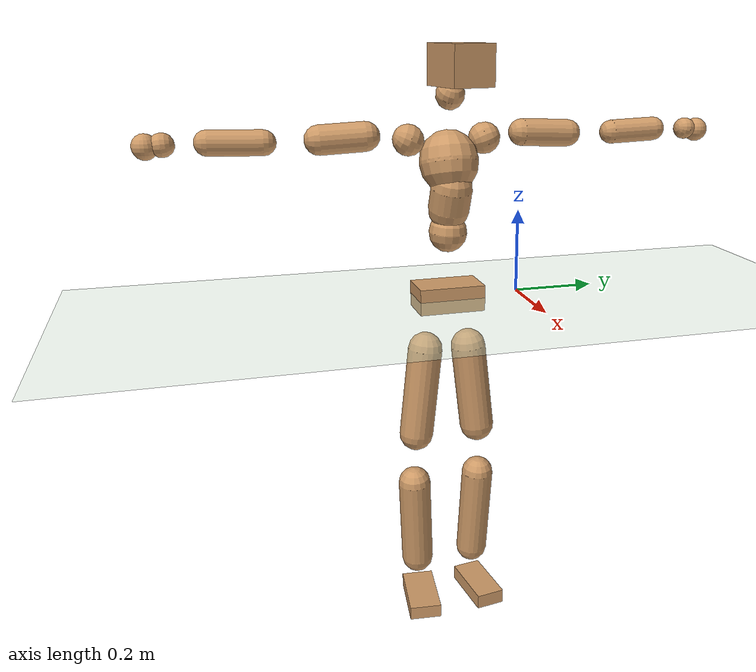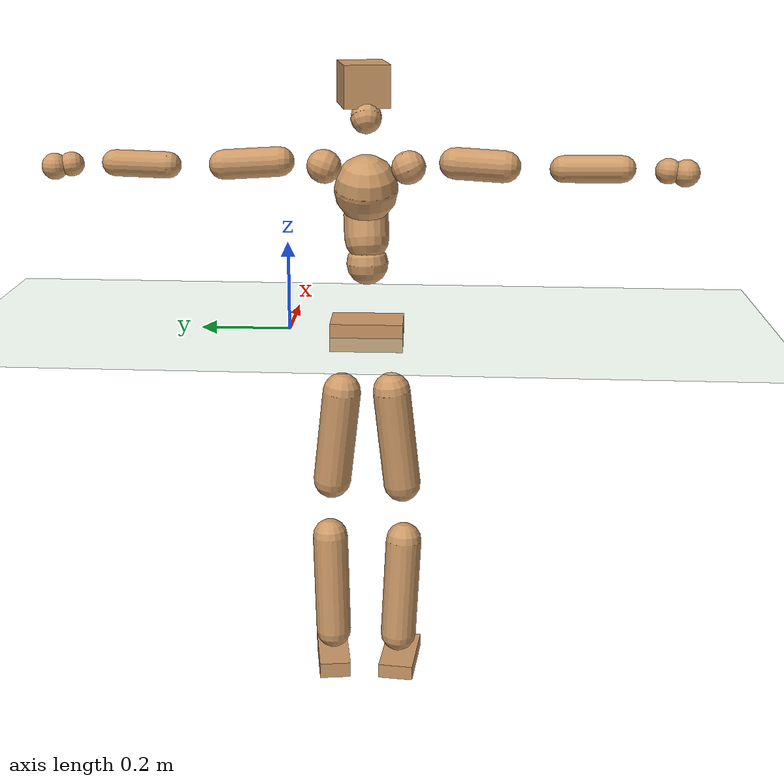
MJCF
<mujoco model="humanoid">
  <compiler coordinate="local" angle="radian"/>
  <default>
    <joint damping="0.0" armature="0.01" stiffness="0.0" limited="true"/>
    <geom conaffinity="1" condim="3" contype="7" margin="0.001" rgba="0.8 0.6 .4 1"/>
  </default>
  <asset>
    <texture type="skybox" builtin="gradient" rgb1=".4 .5 .6" rgb2="0 0 0" width="100" height="100"/>
    <texture builtin="flat" height="1278" mark="cross" markrgb="1 1 1" name="texgeom" random="0.01" rgb1="0.8 0.6 0.4" rgb2="0.8 0.6 0.4" type="cube" width="127"/>
    <texture builtin="checker" height="100" name="texplane" rgb1="0 0 0" rgb2="0.8 0.8 0.8" type="2d" width="100"/>
    <material name="MatPlane" reflectance="0.5" shininess="1" specular="1" texrepeat="60 60" texture="texplane"/>
    <material name="geom" texture="texgeom" texuniform="true"/>
  </asset>
  <worldbody>
    <light cutoff="100" diffuse="1 1 1" dir="-0 0 -1.3" directional="true" exponent="1" pos="0 0 1.3" specular=".1 .1 .1"/>
    <geom conaffinity="1" condim="3" name="floor" pos="0 0 0" rgba="0.8 0.9 0.8 1" size="100 100 .2" type="plane" material="MatPlane"/>
    <body name="Pelvis" pos="-0.0019 -0.1756 0.0084">
      <freejoint name="Pelvis"/>
      <geom type="box" contype="1" conaffinity="1" density="5359.374605" pos="-0.0055 -0.0001 -0.0109" size="0.049 0.0808 0.0315" quat="1.0000 0.0000 0.0000 0.0062" name="Pelvis"/>
      <body name="L_Hip" pos="-0.0161 0.0493 -0.0773">
        <joint name="L_Hip_x" type="hinge" pos="0 0 0" axis="1 0 0" stiffness="1600" damping="160" armature="0.02" range="-180.0000 180.0000"/>
        <joint name="L_Hip_y" type="hinge" pos="0 0 0" axis="0 1 0" stiffness="1600" damping="160" armature="0.02" range="-180.0000 180.0000"/>
        <joint name="L_Hip_z" type="hinge" pos="0 0 0" axis="0 0 1" stiffness="1600" damping="160" armature="0.02" range="-180.0000 180.0000"/>
        <geom type="capsule" contype="1" conaffinity="1" density="2040.816327" size="0.0435" fromto="0.0015 0.0080 -0.0731 0.0059 0.0319 -0.2923" name="L_Hip"/>
        <body name="L_Knee" pos="0.0074 0.0398 -0.3654">
          <joint name="L_Knee_x" type="hinge" pos="0 0 0" axis="1 0 0" stiffness="1600" damping="160" armature="0.02" range="-180.0000 180.0000"/>
          <joint name="L_Knee_y" type="hinge" pos="0 0 0" axis="0 1 0" stiffness="1600" damping="160" armature="0.02" range="-180.0000 180.0000"/>
          <joint name="L_Knee_z" type="hinge" pos="0 0 0" axis="0 0 1" stiffness="1600" damping="160" armature="0.02" range="-180.0000 180.0000"/>
          <geom type="capsule" contype="1" conaffinity="1" density="1234.567901" size="0.041" fromto="-0.0057 -0.0023 -0.0708 -0.0252 -0.0103 -0.3114" name="L_Knee"/>
          <body name="L_Ankle" pos="-0.0309 -0.0127 -0.3821">
            <joint name="L_Ankle_x" type="hinge" pos="0 0 0" axis="1 0 0" stiffness="1600" damping="160" armature="0.02" range="-180.0000 180.0000"/>
            <joint name="L_Ankle_y" type="hinge" pos="0 0 0" axis="0 1 0" stiffness="1600" damping="160" armature="0.02" range="-180.0000 180.0000"/>
            <joint name="L_Ankle_z" type="hinge" pos="0 0 0" axis="0 0 1" stiffness="1600" damping="160" armature="0.02" range="-180.0000 180.0000"/>
            <geom type="box" contype="1" conaffinity="1" density="1000.000013" pos="0.0555 0.0081 -0.0264" size="0.0777 0.0369 0.0188" quat="0.9974 0.0000 0.0000 0.0723" name="L_Ankle"/>
            <body name="L_Toe" pos="0.1109 0.0162 -0.0528">
              <joint name="L_Toe_x" type="hinge" pos="0 0 0" axis="1 0 0" stiffness="1000" damping="100" armature="0.02" range="-180.0000 180.0000"/>
              <joint name="L_Toe_y" type="hinge" pos="0 0 0" axis="0 1 0" stiffness="1000" damping="100" armature="0.02" range="-180.0000 180.0000"/>
              <joint name="L_Toe_z" type="hinge" pos="0 0 0" axis="0 0 1" stiffness="1000" damping="100" armature="0.02" range="-180.0000 180.0000"/>
              <geom type="box" contype="1" conaffinity="1" density="9310036.408418" pos="0.0000 0.0000 0.0278" size="0.0007 0.0019 0.001" quat="0.9968 0.0000 0.0000 0.0797" name="L_Toe"/>
            </body>
          </body>
        </body>
      </body>
      <body name="R_Hip" pos="-0.012 -0.0478 -0.0755">
        <joint name="R_Hip_x" type="hinge" pos="0 0 0" axis="1 0 0" stiffness="1600" damping="160" armature="0.02" range="-180.0000 180.0000"/>
        <joint name="R_Hip_y" type="hinge" pos="0 0 0" axis="0 1 0" stiffness="1600" damping="160" armature="0.02" range="-180.0000 180.0000"/>
        <joint name="R_Hip_z" type="hinge" pos="0 0 0" axis="0 0 1" stiffness="1600" damping="160" armature="0.02" range="-180.0000 180.0000"/>
        <geom type="capsule" contype="1" conaffinity="1" density="2040.816327" size="0.043" fromto="0.0010 -0.0082 -0.0725 0.0041 -0.0340 -0.3008" name="R_Hip"/>
        <body name="R_Knee" pos="0.0051 -0.0422 -0.3733">
          <joint name="R_Knee_x" type="hinge" pos="0 0 0" axis="1 0 0" stiffness="1600" damping="160" armature="0.02" range="-180.0000 180.0000"/>
          <joint name="R_Knee_y" type="hinge" pos="0 0 0" axis="0 1 0" stiffness="1600" damping="160" armature="0.02" range="-180.0000 180.0000"/>
          <joint name="R_Knee_z" type="hinge" pos="0 0 0" axis="0 0 1" stiffness="1600" damping="160" armature="0.02" range="-180.0000 180.0000"/>
          <geom type="capsule" contype="1" conaffinity="1" density="1234.567901" size="0.0417" fromto="-0.0054 0.0030 -0.0714 -0.0235 0.0131 -0.3105" name="R_Knee"/>
          <body name="R_Ankle" pos="-0.0289 0.0161 -0.3819">
            <joint name="R_Ankle_x" type="hinge" pos="0 0 0" axis="1 0 0" stiffness="1600" damping="160" armature="0.02" range="-180.0000 180.0000"/>
            <joint name="R_Ankle_y" type="hinge" pos="0 0 0" axis="0 1 0" stiffness="1600" damping="160" armature="0.02" range="-180.0000 180.0000"/>
            <joint name="R_Ankle_z" type="hinge" pos="0 0 0" axis="0 0 1" stiffness="1600" damping="160" armature="0.02" range="-180.0000 180.0000"/>
            <geom type="box" contype="1" conaffinity="1" density="1000.00002" pos="0.0563 -0.0056 -0.0214" size="0.0799 0.0409 0.0174" quat="0.9988 0.0000 0.0000 -0.0494" name="R_Ankle"/>
            <body name="R_Toe" pos="0.1127 -0.0112 -0.0429">
              <joint name="R_Toe_x" type="hinge" pos="0 0 0" axis="1 0 0" stiffness="1000" damping="100" armature="0.02" range="-180.0000 180.0000"/>
              <joint name="R_Toe_y" type="hinge" pos="0 0 0" axis="0 1 0" stiffness="1000" damping="100" armature="0.02" range="-180.0000 180.0000"/>
              <joint name="R_Toe_z" type="hinge" pos="0 0 0" axis="0 0 1" stiffness="1000" damping="100" armature="0.02" range="-180.0000 180.0000"/>
              <geom type="box" contype="1" conaffinity="1" density="9208534.153855" pos="0.0000 0.0000 0.0232" size="0.0008 0.002 0.001" quat="0.9992 0.0000 0.0000 -0.0399" name="R_Toe"/>
            </body>
          </body>
        </body>
      </body>
      <body name="Torso" pos="-0.0048 -0.0018 0.0875">
        <joint name="Torso_x" type="hinge" pos="0 0 0" axis="1 0 0" stiffness="2000" damping="200" armature="0.02" range="-180.0000 180.0000"/>
        <joint name="Torso_y" type="hinge" pos="0 0 0" axis="0 1 0" stiffness="2000" damping="200" armature="0.02" range="-180.0000 180.0000"/>
        <joint name="Torso_z" type="hinge" pos="0 0 0" axis="0 0 1" stiffness="2000" damping="200" armature="0.02" range="-180.0000 180.0000"/>
        <geom type="capsule" contype="1" conaffinity="1" density="2040.816327" size="0.0461" fromto="0.0027 0.0015 0.0586 0.0028 0.0016 0.0606" name="Torso"/>
        <body name="Spine" pos="0.0056 0.0031 0.1192">
          <joint name="Spine_x" type="hinge" pos="0 0 0" axis="1 0 0" stiffness="2000" damping="200" armature="0.02" range="-180.0000 180.0000"/>
          <joint name="Spine_y" type="hinge" pos="0 0 0" axis="0 1 0" stiffness="2000" damping="200" armature="0.02" range="-180.0000 180.0000"/>
          <joint name="Spine_z" type="hinge" pos="0 0 0" axis="0 0 1" stiffness="2000" damping="200" armature="0.02" range="-180.0000 180.0000"/>
          <geom type="capsule" contype="1" conaffinity="1" density="2040.816327" size="0.0492" fromto="0.0137 0.0029 0.0471 -0.0011 -0.0002 -0.0039" name="Spine"/>
          <body name="Chest" pos="0.0126 0.0026 0.0432">
            <joint name="Chest_x" type="hinge" pos="0 0 0" axis="1 0 0" stiffness="2000" damping="200" armature="0.02" range="-180.0000 180.0000"/>
            <joint name="Chest_y" type="hinge" pos="0 0 0" axis="0 1 0" stiffness="2000" damping="200" armature="0.02" range="-180.0000 180.0000"/>
            <joint name="Chest_z" type="hinge" pos="0 0 0" axis="0 0 1" stiffness="2000" damping="200" armature="0.02" range="-180.0000 180.0000"/>
            <geom type="capsule" contype="1" conaffinity="1" density="2040.816327" size="0.0697" fromto="-0.0181 -0.0016 0.0673 -0.0160 -0.0014 0.0597" name="Chest"/>
            <body name="Neck" pos="-0.035 -0.0053 0.1821">
              <joint name="Neck_x" type="hinge" pos="0 0 0" axis="1 0 0" stiffness="1000" damping="100" armature="0.02" range="-180.0000 180.0000"/>
              <joint name="Neck_y" type="hinge" pos="0 0 0" axis="0 1 0" stiffness="1000" damping="100" armature="0.02" range="-180.0000 180.0000"/>
              <joint name="Neck_z" type="hinge" pos="0 0 0" axis="0 0 1" stiffness="1000" damping="100" armature="0.02" range="-180.0000 180.0000"/>
              <geom type="capsule" contype="1" conaffinity="1" density="1000" size="0.0336" fromto="0.0241 0.0041 0.0313 0.0253 0.0043 0.0329" name="Neck"/>
              <body name="Head" pos="0.0493 0.0084 0.0642">
                <joint name="Head_x" type="hinge" pos="0 0 0" axis="1 0 0" stiffness="1000" damping="100" armature="0.02" range="-180.0000 180.0000"/>
                <joint name="Head_y" type="hinge" pos="0 0 0" axis="0 1 0" stiffness="1000" damping="100" armature="0.02" range="-180.0000 180.0000"/>
                <joint name="Head_z" type="hinge" pos="0 0 0" axis="0 0 1" stiffness="1000" damping="100" armature="0.02" range="-180.0000 180.0000"/>
                <geom type="box" contype="1" conaffinity="1" density="2249.999903" pos="0.0257 0.0052 0.0331" size="0.0662 0.0502 0.0455" quat="0.9950 0.0000 0.0000 0.0995" name="Head"/>
              </body>
            </body>
            <body name="L_Thorax" pos="-0.0326 0.0547 0.0998">
              <joint name="L_Thorax_x" type="hinge" pos="0 0 0" axis="1 0 0" stiffness="1000" damping="100" armature="0.02" range="-180.0000 180.0000"/>
              <joint name="L_Thorax_y" type="hinge" pos="0 0 0" axis="0 1 0" stiffness="1000" damping="100" armature="0.02" range="-180.0000 180.0000"/>
              <joint name="L_Thorax_z" type="hinge" pos="0 0 0" axis="0 0 1" stiffness="1000" damping="100" armature="0.02" range="-180.0000 180.0000"/>
              <geom type="capsule" contype="1" conaffinity="1" density="1000" size="0.0367" fromto="0.0009 0.0326 0.0129 0.0010 0.0345 0.0136" name="L_Thorax"/>
              <body name="L_Shoulder" pos="0.0019 0.0671 0.0265">
                <joint name="L_Shoulder_x" type="hinge" pos="0 0 0" axis="1 0 0" stiffness="1000" damping="100" armature="0.02" range="-720.0000 720.0000"/>
                <joint name="L_Shoulder_y" type="hinge" pos="0 0 0" axis="0 1 0" stiffness="1000" damping="100" armature="0.02" range="-720.0000 720.0000"/>
                <joint name="L_Shoulder_z" type="hinge" pos="0 0 0" axis="0 0 1" stiffness="1000" damping="100" armature="0.02" range="-720.0000 720.0000"/>
                <geom type="capsule" contype="1" conaffinity="1" density="1000" size="0.0319" fromto="-0.0046 0.0616 -0.0032 -0.0135 0.1809 -0.0095" name="L_Shoulder"/>
                <body name="L_Elbow" pos="-0.0181 0.2425 -0.0127">
                  <joint name="L_Elbow_x" type="hinge" pos="0 0 0" axis="1 0 0" stiffness="1000" damping="100" armature="0.02" range="-720.0000 720.0000"/>
                  <joint name="L_Elbow_y" type="hinge" pos="0 0 0" axis="0 1 0" stiffness="1000" damping="100" armature="0.02" range="-720.0000 720.0000"/>
                  <joint name="L_Elbow_z" type="hinge" pos="0 0 0" axis="0 0 1" stiffness="1000" damping="100" armature="0.02" range="-720.0000 720.0000"/>
                  <geom type="capsule" contype="1" conaffinity="1" density="1000" size="0.0284" fromto="-0.0013 0.0583 0.0020 -0.0040 0.1716 0.0060" name="L_Elbow"/>
                  <body name="L_Wrist" pos="-0.0053 0.2299 0.008">
                    <joint name="L_Wrist_x" type="hinge" pos="0 0 0" axis="1 0 0" stiffness="600" damping="60" armature="0.02" range="-180.0000 180.0000"/>
                    <joint name="L_Wrist_y" type="hinge" pos="0 0 0" axis="0 1 0" stiffness="600" damping="60" armature="0.02" range="-180.0000 180.0000"/>
                    <joint name="L_Wrist_z" type="hinge" pos="0 0 0" axis="0 0 1" stiffness="600" damping="60" armature="0.02" range="-180.0000 180.0000"/>
                    <geom type="capsule" contype="1" conaffinity="1" density="1000" size="0.0257" fromto="-0.0060 0.0343 -0.0043 -0.0064 0.0362 -0.0045" name="L_Wrist"/>
                    <body name="L_Hand" pos="-0.0124 0.0705 -0.0088">
                      <joint name="L_Hand_x" type="hinge" pos="0 0 0" axis="1 0 0" stiffness="600" damping="60" armature="0.02" range="-180.0000 180.0000"/>
                      <joint name="L_Hand_y" type="hinge" pos="0 0 0" axis="0 1 0" stiffness="600" damping="60" armature="0.02" range="-180.0000 180.0000"/>
                      <joint name="L_Hand_z" type="hinge" pos="0 0 0" axis="0 0 1" stiffness="600" damping="60" armature="0.02" range="-180.0000 180.0000"/>
                      <geom type="sphere" contype="1" conaffinity="1" density="1000" size="0.0283" pos="0.0000 0.0000 0.0000" name="L_Hand"/>
                    </body>
                  </body>
                </body>
              </body>
            </body>
            <body name="R_Thorax" pos="-0.0348 -0.0585 0.0989">
              <joint name="R_Thorax_x" type="hinge" pos="0 0 0" axis="1 0 0" stiffness="1000" damping="100" armature="0.02" range="-180.0000 180.0000"/>
              <joint name="R_Thorax_y" type="hinge" pos="0 0 0" axis="0 1 0" stiffness="1000" damping="100" armature="0.02" range="-180.0000 180.0000"/>
              <joint name="R_Thorax_z" type="hinge" pos="0 0 0" axis="0 0 1" stiffness="1000" damping="100" armature="0.02" range="-180.0000 180.0000"/>
              <geom type="capsule" contype="1" conaffinity="1" density="1000" size="0.0362" fromto="-0.0013 -0.0342 0.0137 -0.0014 -0.0360 0.0145" name="R_Thorax"/>
              <body name="R_Shoulder" pos="-0.0027 -0.0702 0.0282">
                <joint name="R_Shoulder_x" type="hinge" pos="0 0 0" axis="1 0 0" stiffness="1000" damping="100" armature="0.02" range="-720.0000 720.0000"/>
                <joint name="R_Shoulder_y" type="hinge" pos="0 0 0" axis="0 1 0" stiffness="1000" damping="100" armature="0.02" range="-720.0000 720.0000"/>
                <joint name="R_Shoulder_z" type="hinge" pos="0 0 0" axis="0 0 1" stiffness="1000" damping="100" armature="0.02" range="-720.0000 720.0000"/>
                <geom type="capsule" contype="1" conaffinity="1" density="1000" size="0.034" fromto="-0.0029 -0.0639 -0.0033 -0.0076 -0.1693 -0.0088" name="R_Shoulder"/>
                <body name="R_Elbow" pos="-0.0105 -0.2332 -0.0121">
                  <joint name="R_Elbow_x" type="hinge" pos="0 0 0" axis="1 0 0" stiffness="1000" damping="100" armature="0.02" range="-720.0000 720.0000"/>
                  <joint name="R_Elbow_y" type="hinge" pos="0 0 0" axis="0 1 0" stiffness="1000" damping="100" armature="0.02" range="-720.0000 720.0000"/>
                  <joint name="R_Elbow_z" type="hinge" pos="0 0 0" axis="0 0 1" stiffness="1000" damping="100" armature="0.02" range="-720.0000 720.0000"/>
                  <geom type="capsule" contype="1" conaffinity="1" density="1000" size="0.0288" fromto="-0.0029 -0.0587 0.0010 -0.0088 -0.1805 0.0032" name="R_Elbow"/>
                  <body name="R_Wrist" pos="-0.0117 -0.2392 0.0043">
                    <joint name="R_Wrist_x" type="hinge" pos="0 0 0" axis="1 0 0" stiffness="600" damping="60" armature="0.02" range="-180.0000 180.0000"/>
                    <joint name="R_Wrist_y" type="hinge" pos="0 0 0" axis="0 1 0" stiffness="600" damping="60" armature="0.02" range="-180.0000 180.0000"/>
                    <joint name="R_Wrist_z" type="hinge" pos="0 0 0" axis="0 0 1" stiffness="600" damping="60" armature="0.02" range="-180.0000 180.0000"/>
                    <geom type="capsule" contype="1" conaffinity="1" density="1000" size="0.0267" fromto="-0.0044 -0.0351 -0.0032 -0.0047 -0.0371 -0.0034" name="R_Wrist"/>
                    <body name="R_Hand" pos="-0.0091 -0.0722 -0.0065">
                      <joint name="R_Hand_x" type="hinge" pos="0 0 0" axis="1 0 0" stiffness="600" damping="60" armature="0.02" range="-180.0000 180.0000"/>
                      <joint name="R_Hand_y" type="hinge" pos="0 0 0" axis="0 1 0" stiffness="600" damping="60" armature="0.02" range="-180.0000 180.0000"/>
                      <joint name="R_Hand_z" type="hinge" pos="0 0 0" axis="0 0 1" stiffness="600" damping="60" armature="0.02" range="-180.0000 180.0000"/>
                      <geom type="sphere" contype="1" conaffinity="1" density="1000" size="0.0288" pos="0.0000 0.0000 0.0000" name="R_Hand"/>
                    </body>
                  </body>
                </body>
              </body>
            </body>
          </body>
        </body>
      </body>
    </body>
  </worldbody>
  <actuator>
    <motor name="L_Hip_x" joint="L_Hip_x" gear="500"/>
    <motor name="L_Hip_y" joint="L_Hip_y" gear="500"/>
    <motor name="L_Hip_z" joint="L_Hip_z" gear="500"/>
    <motor name="L_Knee_x" joint="L_Knee_x" gear="500"/>
    <motor name="L_Knee_y" joint="L_Knee_y" gear="500"/>
    <motor name="L_Knee_z" joint="L_Knee_z" gear="500"/>
    <motor name="L_Ankle_x" joint="L_Ankle_x" gear="500"/>
    <motor name="L_Ankle_y" joint="L_Ankle_y" gear="500"/>
    <motor name="L_Ankle_z" joint="L_Ankle_z" gear="500"/>
    <motor name="L_Toe_x" joint="L_Toe_x" gear="500"/>
    <motor name="L_Toe_y" joint="L_Toe_y" gear="500"/>
    <motor name="L_Toe_z" joint="L_Toe_z" gear="500"/>
    <motor name="R_Hip_x" joint="R_Hip_x" gear="500"/>
    <motor name="R_Hip_y" joint="R_Hip_y" gear="500"/>
    <motor name="R_Hip_z" joint="R_Hip_z" gear="500"/>
    <motor name="R_Knee_x" joint="R_Knee_x" gear="500"/>
    <motor name="R_Knee_y" joint="R_Knee_y" gear="500"/>
    <motor name="R_Knee_z" joint="R_Knee_z" gear="500"/>
    <motor name="R_Ankle_x" joint="R_Ankle_x" gear="500"/>
    <motor name="R_Ankle_y" joint="R_Ankle_y" gear="500"/>
    <motor name="R_Ankle_z" joint="R_Ankle_z" gear="500"/>
    <motor name="R_Toe_x" joint="R_Toe_x" gear="500"/>
    <motor name="R_Toe_y" joint="R_Toe_y" gear="500"/>
    <motor name="R_Toe_z" joint="R_Toe_z" gear="500"/>
    <motor name="Torso_x" joint="Torso_x" gear="500"/>
    <motor name="Torso_y" joint="Torso_y" gear="500"/>
    <motor name="Torso_z" joint="Torso_z" gear="500"/>
    <motor name="Spine_x" joint="Spine_x" gear="500"/>
    <motor name="Spine_y" joint="Spine_y" gear="500"/>
    <motor name="Spine_z" joint="Spine_z" gear="500"/>
    <motor name="Chest_x" joint="Chest_x" gear="500"/>
    <motor name="Chest_y" joint="Chest_y" gear="500"/>
    <motor name="Chest_z" joint="Chest_z" gear="500"/>
    <motor name="Neck_x" joint="Neck_x" gear="500"/>
    <motor name="Neck_y" joint="Neck_y" gear="500"/>
    <motor name="Neck_z" joint="Neck_z" gear="500"/>
    <motor name="Head_x" joint="Head_x" gear="500"/>
    <motor name="Head_y" joint="Head_y" gear="500"/>
    <motor name="Head_z" joint="Head_z" gear="500"/>
    <motor name="L_Thorax_x" joint="L_Thorax_x" gear="500"/>
    <motor name="L_Thorax_y" joint="L_Thorax_y" gear="500"/>
    <motor name="L_Thorax_z" joint="L_Thorax_z" gear="500"/>
    <motor name="L_Shoulder_x" joint="L_Shoulder_x" gear="500"/>
    <motor name="L_Shoulder_y" joint="L_Shoulder_y" gear="500"/>
    <motor name="L_Shoulder_z" joint="L_Shoulder_z" gear="500"/>
    <motor name="L_Elbow_x" joint="L_Elbow_x" gear="500"/>
    <motor name="L_Elbow_y" joint="L_Elbow_y" gear="500"/>
    <motor name="L_Elbow_z" joint="L_Elbow_z" gear="500"/>
    <motor name="L_Wrist_x" joint="L_Wrist_x" gear="500"/>
    <motor name="L_Wrist_y" joint="L_Wrist_y" gear="500"/>
    <motor name="L_Wrist_z" joint="L_Wrist_z" gear="500"/>
    <motor name="L_Hand_x" joint="L_Hand_x" gear="500"/>
    <motor name="L_Hand_y" joint="L_Hand_y" gear="500"/>
    <motor name="L_Hand_z" joint="L_Hand_z" gear="500"/>
    <motor name="R_Thorax_x" joint="R_Thorax_x" gear="500"/>
    <motor name="R_Thorax_y" joint="R_Thorax_y" gear="500"/>
    <motor name="R_Thorax_z" joint="R_Thorax_z" gear="500"/>
    <motor name="R_Shoulder_x" joint="R_Shoulder_x" gear="500"/>
    <motor name="R_Shoulder_y" joint="R_Shoulder_y" gear="500"/>
    <motor name="R_Shoulder_z" joint="R_Shoulder_z" gear="500"/>
    <motor name="R_Elbow_x" joint="R_Elbow_x" gear="500"/>
    <motor name="R_Elbow_y" joint="R_Elbow_y" gear="500"/>
    <motor name="R_Elbow_z" joint="R_Elbow_z" gear="500"/>
    <motor name="R_Wrist_x" joint="R_Wrist_x" gear="500"/>
    <motor name="R_Wrist_y" joint="R_Wrist_y" gear="500"/>
    <motor name="R_Wrist_z" joint="R_Wrist_z" gear="500"/>
    <motor name="R_Hand_x" joint="R_Hand_x" gear="500"/>
    <motor name="R_Hand_y" joint="R_Hand_y" gear="500"/>
    <motor name="R_Hand_z" joint="R_Hand_z" gear="500"/>
  </actuator>
  <contact>
    <exclude body1="Torso" body2="Chest"/>
    <exclude body1="Head" body2="Chest"/>
    <exclude body1="R_Knee" body2="R_Toe"/>
    <exclude body1="R_Knee" body2="L_Ankle"/>
    <exclude body1="R_Knee" body2="L_Toe"/>
    <exclude body1="L_Knee" body2="L_Toe"/>
    <exclude body1="L_Knee" body2="R_Ankle"/>
    <exclude body1="L_Knee" body2="R_Toe"/>
    <exclude body1="L_Shoulder" body2="Chest"/>
    <exclude body1="R_Shoulder" body2="Chest"/>
  </contact>
  <sensor/>
  <size njmax="700" nconmax="700"/>
</mujoco>
